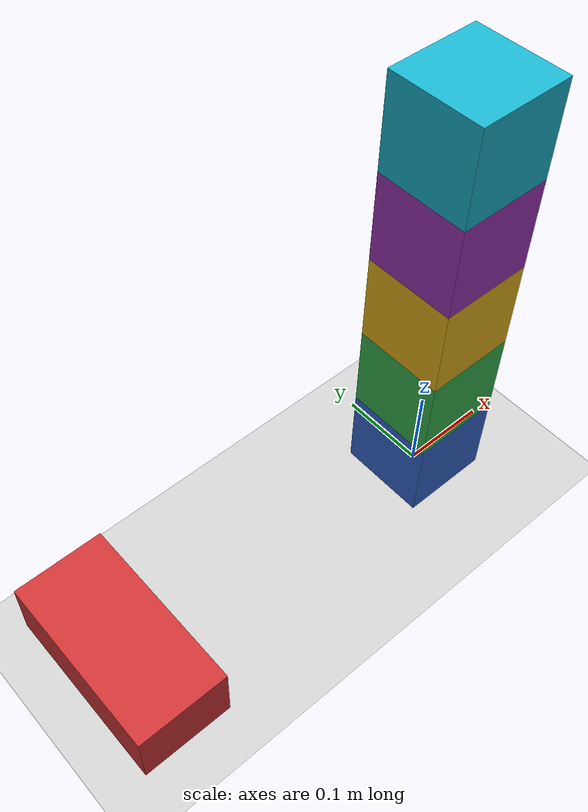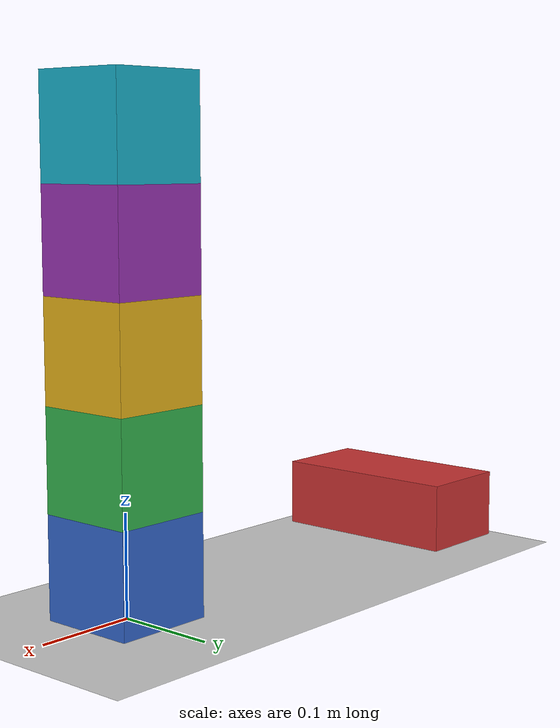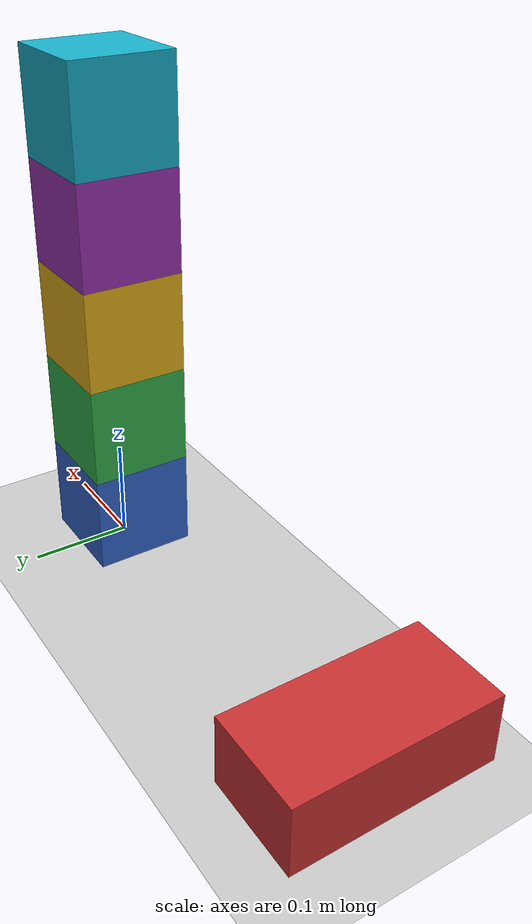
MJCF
<mujoco model="block_stack_topple">
  <option timestep="0.002" gravity="0 0 -9.81" integrator="implicitfast"/>

  <worldbody>
    <light name="sun" pos="0 0 3" dir="0 0 -1" directional="true"/>
    <geom name="floor" type="plane" size="3 3 0.1" friction="0.8 0.005 0.0001" rgba="0.8 0.8 0.8 1"/>

    <body name="pusher" pos="-0.4 0 0.045">
      <joint name="pusher_slide" type="slide" axis="1 0 0" limited="true" range="-0.1 0.8" damping="0"/>
      <geom name="pusher_geom" type="box" size="0.05 0.1 0.035" mass="2" friction="0.8 0.005 0.0001" rgba="0.8 0.2 0.2 1"/>
    </body>

    <body name="block1" pos="0 0 0.05">
      <freejoint name="block1_free"/>
      <geom name="block1_geom" type="box" size="0.05 0.05 0.05" density="1000" friction="0.8 0.005 0.0001" rgba="0.2 0.4 0.8 1"/>
    </body>
    <body name="block2" pos="0 0 0.15">
      <freejoint name="block2_free"/>
      <geom name="block2_geom" type="box" size="0.05 0.05 0.05" density="1000" friction="0.8 0.005 0.0001" rgba="0.2 0.7 0.3 1"/>
    </body>
    <body name="block3" pos="0 0 0.25">
      <freejoint name="block3_free"/>
      <geom name="block3_geom" type="box" size="0.05 0.05 0.05" density="1000" friction="0.8 0.005 0.0001" rgba="0.9 0.7 0.1 1"/>
    </body>
    <body name="block4" pos="0 0 0.35">
      <freejoint name="block4_free"/>
      <geom name="block4_geom" type="box" size="0.05 0.05 0.05" density="1000" friction="0.8 0.005 0.0001" rgba="0.6 0.2 0.7 1"/>
    </body>
    <body name="block5" pos="0 0 0.45">
      <freejoint name="block5_free"/>
      <geom name="block5_geom" type="box" size="0.05 0.05 0.05" density="1000" friction="0.8 0.005 0.0001" rgba="0.1 0.7 0.8 1"/>
    </body>
  </worldbody>

  <actuator>
    <velocity name="pusher_motor" joint="pusher_slide" kv="300" forcelimited="true" forcerange="-200 200"/>
  </actuator>

  <keyframe>
    <key name="start" ctrl="0.6"/>
  </keyframe>
</mujoco>
